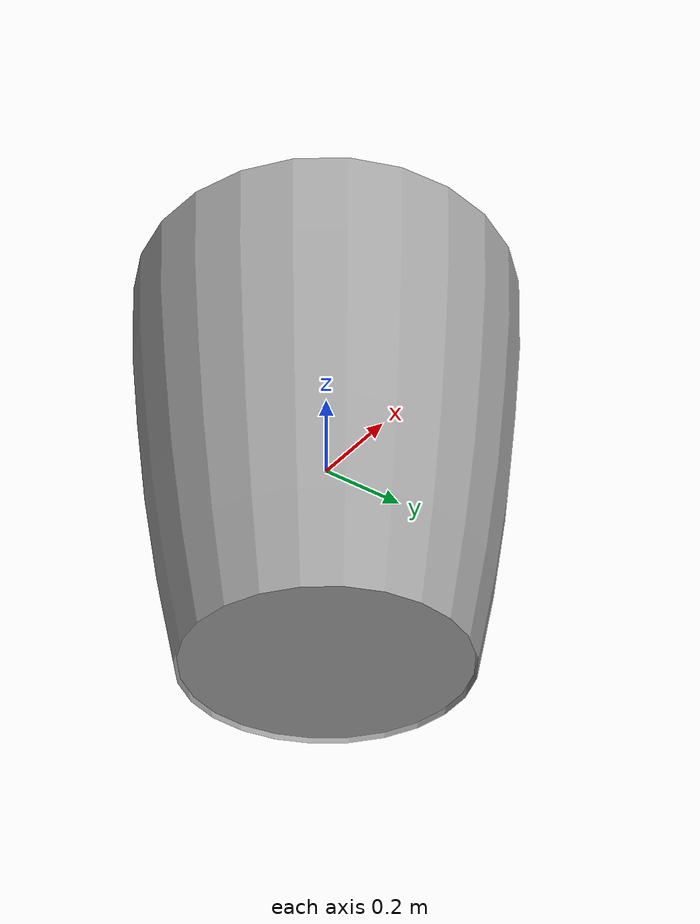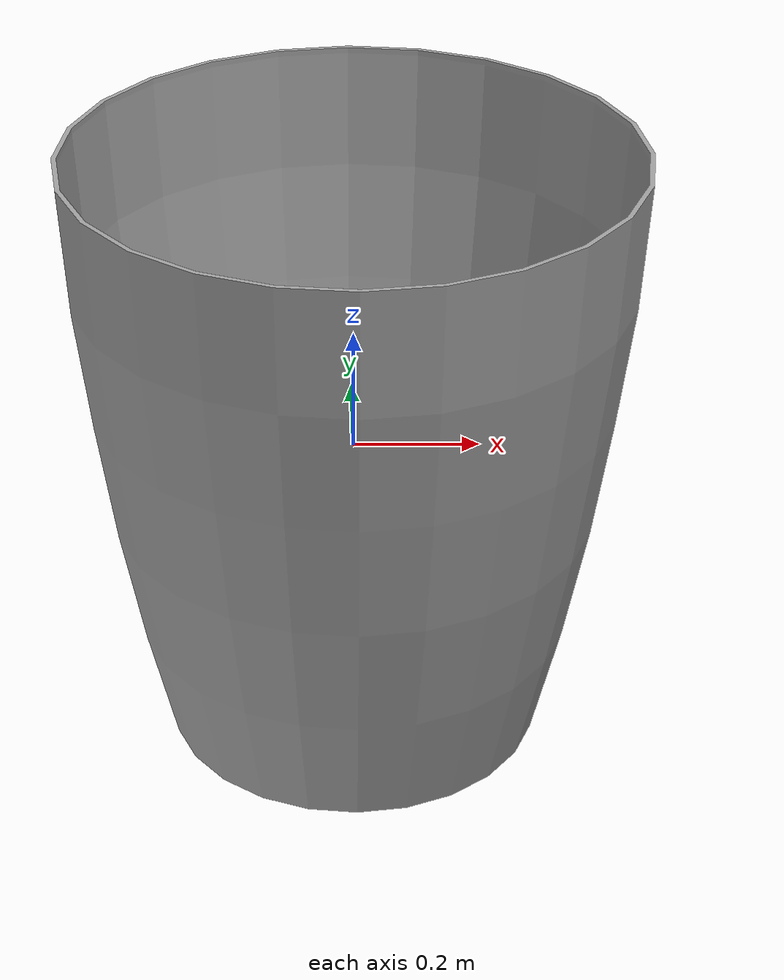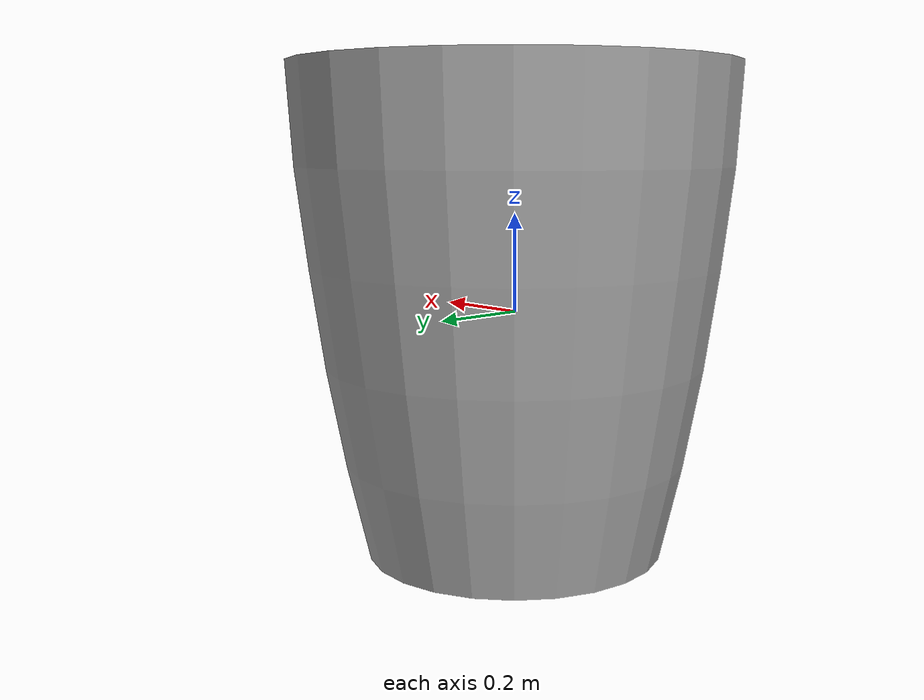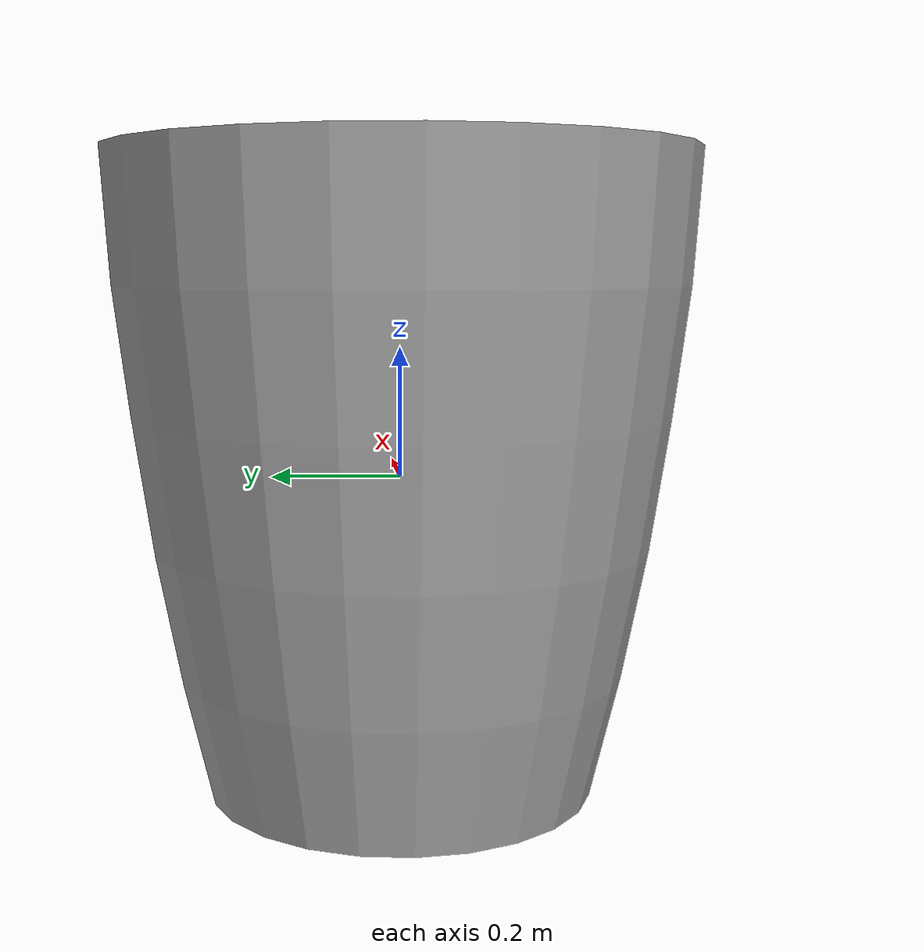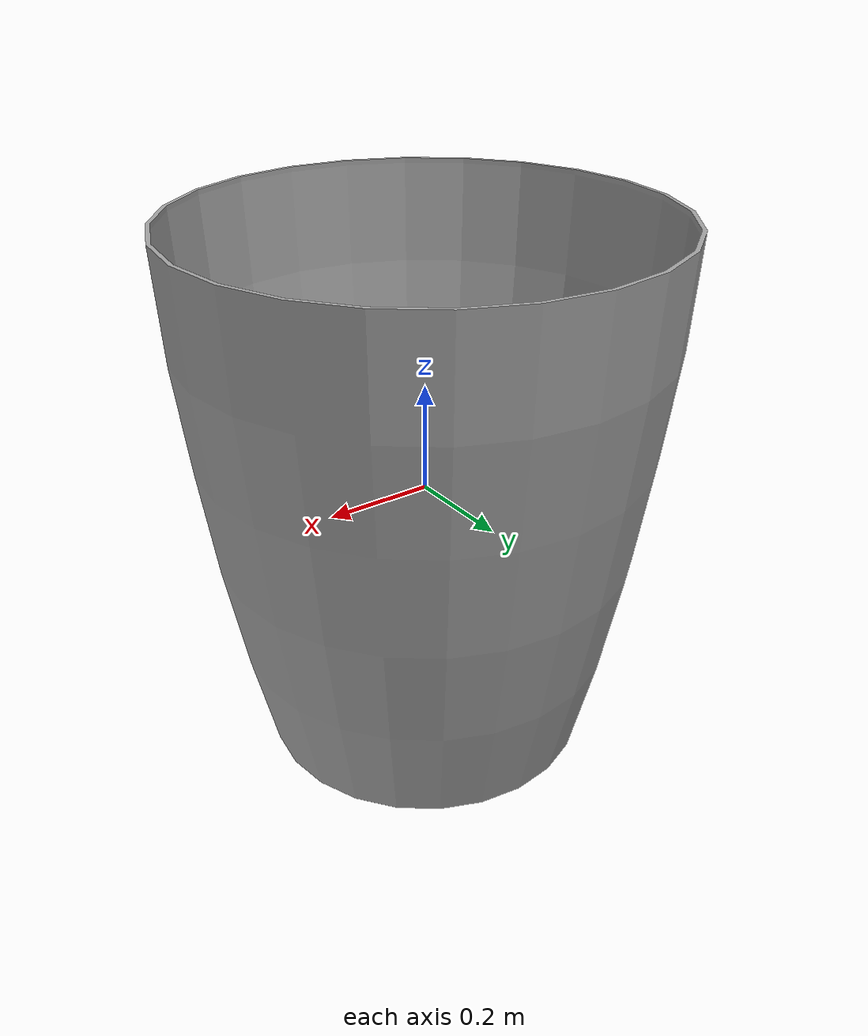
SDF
<?xml version="1.0" ?>
<sdf version="1.5">
  <model name='cup6'>
    <pose>0 0 0 0 0 0</pose>
    <static>1</static>
    <link name='body'>
      <collision name="cup6-coll">
        <pose>0 0 -0.5 0 0 0</pose>
        <geometry>
          <mesh>
            <uri>model://cup6/meshes/cup6.dae</uri>
          </mesh>
        </geometry>
      </collision>
      <visual name='cup6'>
        <cast_shadows>1</cast_shadows>
        <pose>0 0 -0.5 0 0 0</pose>
        <geometry>
          <mesh>
            <uri>model://cup6/meshes/cup6.dae</uri>
          </mesh>
        </geometry>
      </visual>
      <velocity_decay>
        <linear>0</linear>
        <angular>0</angular>
      </velocity_decay>
      <self_collide>0</self_collide>
      <kinematic>0</kinematic>
      <gravity>1</gravity>
    </link>
  </model>

</sdf>
